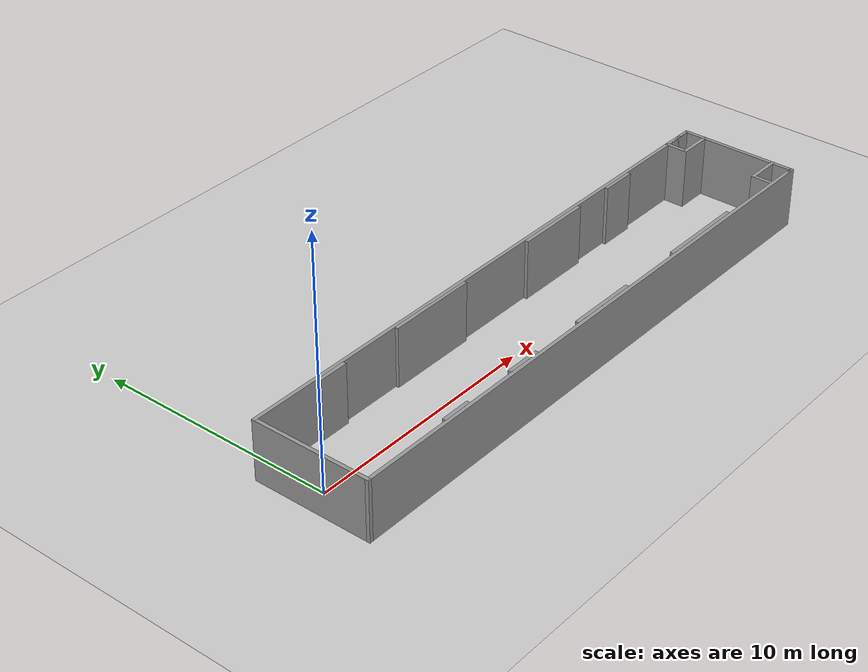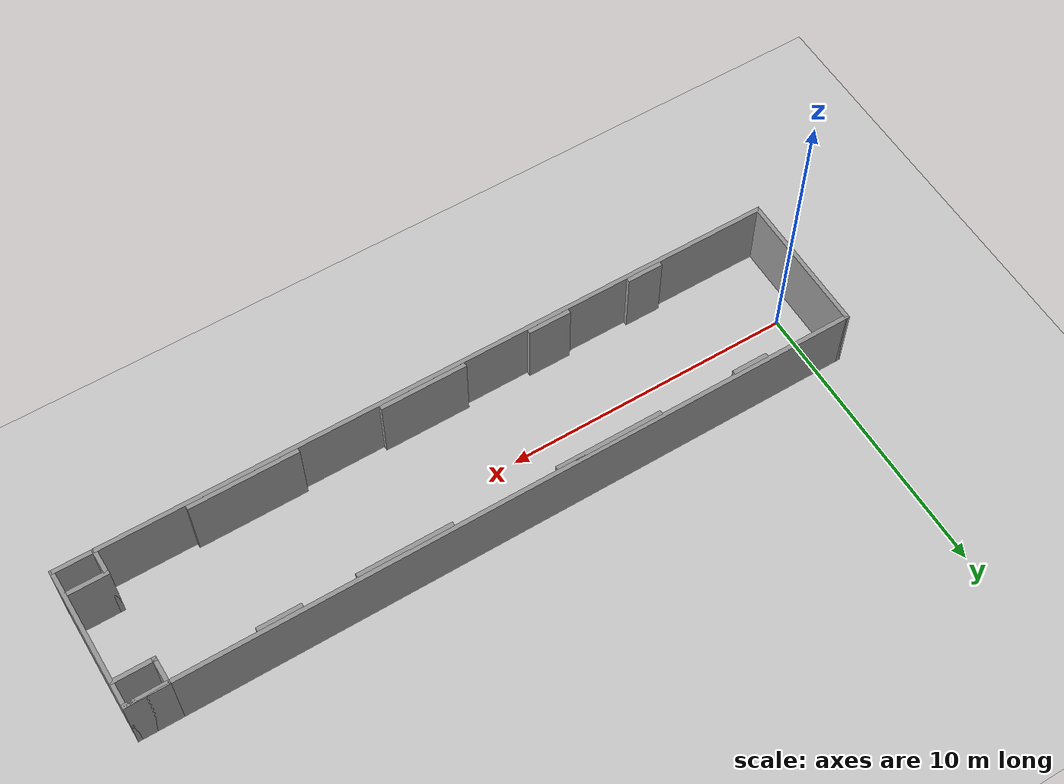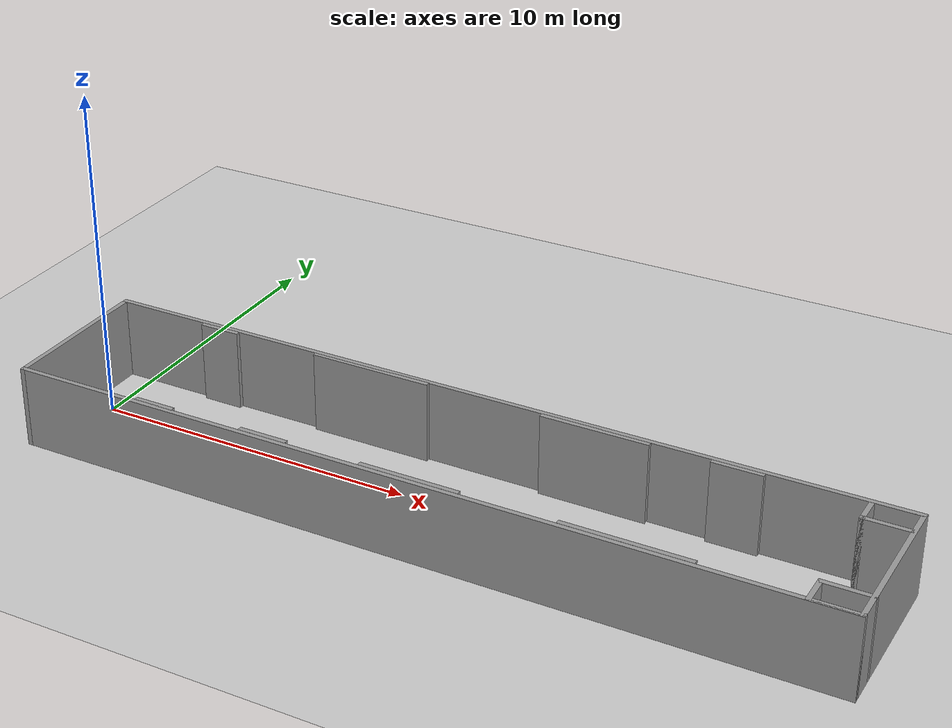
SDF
<sdf version="1.6">
 <world name="default">
  <light name="sun" type="directional">
   <pose>0 0 10 0 -0 0</pose>
   <diffuse>0.8 0.8 0.8 1</diffuse>
   <specular>0.1 0.1 0.1 1</specular>
   <attenuation>
    <range>1000</range>
    <constant>0.9</constant>
    <linear>0.01</linear>
    <quadratic>0.001</quadratic>
   </attenuation>
   <direction>-0.5 0.5 -1</direction>
  </light>
  <model name="ground_plane">
   <static>1</static>
   <link name="link">
    <collision name="collision">
     <geometry><plane><normal>0 0 1</normal><size>100 100</size></plane></geometry>
     <surface><friction><ode><mu>100</mu><mu2>50</mu2></ode></friction></surface>
    </collision>
    <visual name="visual">
     <cast_shadows>0</cast_shadows>
     <geometry><plane><normal>0 0 1</normal><size>100 100</size></plane></geometry>
     <material>
      <script><uri>file://media/materials/scripts/gazebo.material</uri><name>Gazebo/Grey</name></script>
     </material>
    </visual>
   </link>
  </model>
  <gravity>0 0 -9.8</gravity>
  <magnetic_field>6e-06 2.3e-05 -4.2e-05</magnetic_field>
  <atmosphere type="adiabatic"/>
  <physics name="default_physics" default="0" type="ode">
   <max_step_size>0.001</max_step_size>
   <real_time_factor>1</real_time_factor>
   <real_time_update_rate>1000</real_time_update_rate>
  </physics>
  <scene><ambient>0.4 0.4 0.4 1</ambient><background>0.7 0.7 0.7 1</background><shadows>1</shadows></scene>
  <spherical_coordinates>
   <surface_model>EARTH_WGS84</surface_model>
   <latitude_deg>0</latitude_deg>
   <longitude_deg>0</longitude_deg>
   <elevation>0</elevation>
   <heading_deg>0</heading_deg>
  </spherical_coordinates>
  <model name="i_map">
   <pose>11.5819 -0.300655 0 0 -0 0</pose>
   <link name="Wall_10">
    <collision name="Wall_10_Collision">
     <geometry><box><size>3.75 0.15 2.5</size></box></geometry>
     <pose>0 0 1.25 0 -0 0</pose>
    </collision>
    <visual name="Wall_10_Visual">
     <pose>0 0 1.25 0 -0 0</pose>
     <geometry><box><size>3.75 0.15 2.5</size></box></geometry>
     <material>
      <script><uri>file://media/materials/scripts/gazebo.material</uri><name>Gazebo/Grey</name></script>
      <ambient>1 1 1 1</ambient>
     </material>
    </visual>
    <pose>-3.72023 2.30333 0 0 -0 0</pose>
   </link>
   <link name="Wall_12">
    <collision name="Wall_12_Collision">
     <geometry><box><size>3.25 0.15 2.5</size></box></geometry>
     <pose>0 0 1.25 0 -0 0</pose>
    </collision>
    <visual name="Wall_12_Visual">
     <pose>0 0 1.25 0 -0 0</pose>
     <geometry><box><size>3.25 0.15 2.5</size></box></geometry>
     <material>
      <script><uri>file://media/materials/scripts/gazebo.material</uri><name>Gazebo/Grey</name></script>
      <ambient>1 1 1 1</ambient>
     </material>
    </visual>
    <pose>3.32997 2.28812 0 0 -0 0</pose>
   </link>
   <link name="Wall_14">
    <collision name="Wall_14_Collision">
     <geometry><box><size>1.5 0.15 2.5</size></box></geometry>
     <pose>0 0 1.25 0 -0 0</pose>
    </collision>
    <visual name="Wall_14_Visual">
     <pose>0 0 1.25 0 -0 0</pose>
     <geometry><box><size>1.5 0.15 2.5</size></box></geometry>
     <material>
      <script><uri>file://media/materials/scripts/gazebo.material</uri><name>Gazebo/Grey</name></script>
      <ambient>1 1 1 1</ambient>
     </material>
    </visual>
    <pose>7.45865 2.28812 0 0 -0 0</pose>
   </link>
   <link name="Wall_16">
    <collision name="Wall_16_Collision">
     <geometry><box><size>1.5 0.15 2.5</size></box></geometry>
     <pose>0 0 1.25 0 -0 0</pose>
    </collision>
    <visual name="Wall_16_Visual">
     <pose>0 0 1.25 0 -0 0</pose>
     <geometry><box><size>1.5 0.15 2.5</size></box></geometry>
     <material>
      <script><uri>file://media/materials/scripts/gazebo.material</uri><name>Gazebo/Grey</name></script>
      <ambient>1 1 1 1</ambient>
     </material>
    </visual>
    <pose>11.75 2.425 0 0 -0 3.14159</pose>
   </link>
   <link name="Wall_17">
    <collision name="Wall_17_Collision">
     <geometry><box><size>1 0.15 2.5</size></box></geometry>
     <pose>0 0 1.25 0 -0 0</pose>
    </collision>
    <visual name="Wall_17_Visual">
     <pose>0 0 1.25 0 -0 0</pose>
     <geometry><box><size>1 0.15 2.5</size></box></geometry>
     <material>
      <script><uri>file://media/materials/scripts/gazebo.material</uri><name>Gazebo/Grey</name></script>
      <ambient>1 1 1 1</ambient>
     </material>
    </visual>
    <pose>11.075 2 0 0 0 -1.5708</pose>
   </link>
   <link name="Wall_19">
    <collision name="Wall_19_Collision">
     <geometry><box><size>1.5 0.15 2.5</size></box></geometry>
     <pose>0 0 1.25 0 -0 0</pose>
    </collision>
    <visual name="Wall_19_Visual">
     <pose>0 0 1.25 0 -0 0</pose>
     <geometry><box><size>1.5 0.15 2.5</size></box></geometry>
     <material>
      <script><uri>file://media/materials/scripts/gazebo.material</uri><name>Gazebo/Grey</name></script>
      <ambient>1 1 1 1</ambient>
     </material>
    </visual>
    <pose>11.75 -2.425 0 0 -0 3.14159</pose>
   </link>
   <link name="Wall_2">
    <collision name="Wall_2_Collision">
     <geometry><box><size>25 0.15 2.5</size></box></geometry>
     <pose>0 0 1.25 0 -0 0</pose>
    </collision>
    <visual name="Wall_2_Visual">
     <pose>0 0 1.25 0 -0 0</pose>
     <geometry><box><size>25 0.15 2.5</size></box></geometry>
     <material>
      <script><uri>file://media/materials/scripts/gazebo.material</uri><name>Gazebo/Grey</name></script>
      <ambient>1 1 1 1</ambient>
     </material>
    </visual>
    <pose>0 2.425 0 0 -0 0</pose>
   </link>
   <link name="Wall_20">
    <collision name="Wall_20_Collision">
     <geometry><box><size>1 0.15 2.5</size></box></geometry>
     <pose>0 0 1.25 0 -0 0</pose>
    </collision>
    <visual name="Wall_20_Visual">
     <pose>0 0 1.25 0 -0 0</pose>
     <geometry><box><size>1 0.15 2.5</size></box></geometry>
     <material>
      <script><uri>file://media/materials/scripts/gazebo.material</uri><name>Gazebo/Grey</name></script>
      <ambient>1 1 1 1</ambient>
     </material>
    </visual>
    <pose>11.075 -2 0 0 -0 1.5708</pose>
   </link>
   <link name="Wall_21">
    <collision name="Wall_21_Collision">
     <geometry><box><size>1.5 0.15 2.5</size></box></geometry>
     <pose>0 0 1.25 0 -0 0</pose>
    </collision>
    <visual name="Wall_21_Visual">
     <pose>0 0 1.25 0 -0 0</pose>
     <geometry><box><size>1.5 0.15 2.5</size></box></geometry>
     <material>
      <script><uri>file://media/materials/scripts/gazebo.material</uri><name>Gazebo/Grey</name></script>
      <ambient>1 1 1 1</ambient>
     </material>
    </visual>
    <pose>11.75 -1.575 0 0 -0 0</pose>
   </link>
   <link name="Wall_23">
    <collision name="Wall_23_Collision">
     <geometry><box><size>1.5 0.15 2.5</size></box></geometry>
     <pose>0 0 1.25 0 -0 0</pose>
    </collision>
    <visual name="Wall_23_Visual">
     <pose>0 0 1.25 0 -0 0</pose>
     <geometry><box><size>1.5 0.15 2.5</size></box></geometry>
     <material>
      <script><uri>file://media/materials/scripts/gazebo.material</uri><name>Gazebo/Grey</name></script>
      <ambient>1 1 1 1</ambient>
     </material>
    </visual>
    <pose>11.75 1.575 0 0 -0 0</pose>
   </link>
   <link name="Wall_27">
    <collision name="Wall_27_Collision">
     <geometry><box><size>1.25 0.15 2.5</size></box></geometry>
     <pose>0 0 1.25 0 -0 0</pose>
    </collision>
    <visual name="Wall_27_Visual">
     <pose>0 0 1.25 0 -0 0</pose>
     <geometry><box><size>1.25 0.15 2.5</size></box></geometry>
     <material>
      <script><uri>file://media/materials/scripts/gazebo.material</uri><name>Gazebo/Grey</name></script>
      <ambient>1 1 1 1</ambient>
     </material>
    </visual>
    <pose>-7.96635 -2.28971 0 0 -0 0</pose>
   </link>
   <link name="Wall_29">
    <collision name="Wall_29_Collision">
     <geometry><box><size>1.5 0.15 2.5</size></box></geometry>
     <pose>0 0 1.25 0 -0 0</pose>
    </collision>
    <visual name="Wall_29_Visual">
     <pose>0 0 1.25 0 -0 0</pose>
     <geometry><box><size>1.5 0.15 2.5</size></box></geometry>
     <material>
      <script><uri>file://media/materials/scripts/gazebo.material</uri><name>Gazebo/Grey</name></script>
      <ambient>1 1 1 1</ambient>
     </material>
    </visual>
    <pose>-4.40417 -2.2745 0 0 -0 0</pose>
   </link>
   <link name="Wall_3">
    <collision name="Wall_3_Collision">
     <geometry><box><size>5 0.15 2.5</size></box></geometry>
     <pose>0 0 1.25 0 -0 0</pose>
    </collision>
    <visual name="Wall_3_Visual">
     <pose>0 0 1.25 0 -0 0</pose>
     <geometry><box><size>5 0.15 2.5</size></box></geometry>
     <material>
      <script><uri>file://media/materials/scripts/gazebo.material</uri><name>Gazebo/Grey</name></script>
      <ambient>1 1 1 1</ambient>
     </material>
    </visual>
    <pose>12.425 0 0 0 0 -1.5708</pose>
   </link>
   <link name="Wall_31">
    <collision name="Wall_31_Collision">
     <geometry><box><size>3 0.15 2.5</size></box></geometry>
     <pose>0 0 1.25 0 -0 0</pose>
    </collision>
    <visual name="Wall_31_Visual">
     <pose>0 0 1.25 0 -0 0</pose>
     <geometry><box><size>3 0.15 2.5</size></box></geometry>
     <material>
      <script><uri>file://media/materials/scripts/gazebo.material</uri><name>Gazebo/Grey</name></script>
      <ambient>1 1 1 1</ambient>
     </material>
    </visual>
    <pose>0.117596 -2.2745 0 0 -0 0</pose>
   </link>
   <link name="Wall_33">
    <collision name="Wall_33_Collision">
     <geometry><box><size>3.75 0.15 2.5</size></box></geometry>
     <pose>0 0 1.25 0 -0 0</pose>
    </collision>
    <visual name="Wall_33_Visual">
     <pose>0 0 1.25 0 -0 0</pose>
     <geometry><box><size>3.75 0.15 2.5</size></box></geometry>
     <material>
      <script><uri>file://media/materials/scripts/gazebo.material</uri><name>Gazebo/Grey</name></script>
      <ambient>1 1 1 1</ambient>
     </material>
    </visual>
    <pose>6.28713 -2.2745 0 0 -0 0</pose>
   </link>
   <link name="Wall_4">
    <collision name="Wall_4_Collision">
     <geometry><box><size>25 0.15 2.5</size></box></geometry>
     <pose>0 0 1.25 0 -0 0</pose>
    </collision>
    <visual name="Wall_4_Visual">
     <pose>0 0 1.25 0 -0 0</pose>
     <geometry><box><size>25 0.15 2.5</size></box></geometry>
     <material>
      <script><uri>file://media/materials/scripts/gazebo.material</uri><name>Gazebo/Grey</name></script>
      <ambient>1 1 1 1</ambient>
     </material>
    </visual>
    <pose>0 -2.425 0 0 -0 3.14159</pose>
   </link>
   <link name="Wall_5">
    <collision name="Wall_5_Collision">
     <geometry><box><size>5 0.15 2.5</size></box></geometry>
     <pose>0 0 1.25 0 -0 0</pose>
    </collision>
    <visual name="Wall_5_Visual">
     <pose>0 0 1.25 0 -0 0</pose>
     <geometry><box><size>5 0.15 2.5</size></box></geometry>
     <material>
      <script><uri>file://media/materials/scripts/gazebo.material</uri><name>Gazebo/Grey</name></script>
      <ambient>1 1 1 1</ambient>
     </material>
    </visual>
    <pose>-12.425 0 0 0 -0 1.5708</pose>
   </link>
   <link name="Wall_7">
    <collision name="Wall_7_Collision">
     <geometry><box><size>1.25 0.15 2.5</size></box></geometry>
     <pose>0 0 1.25 0 -0 0</pose>
    </collision>
    <visual name="Wall_7_Visual">
     <pose>0 0 1.25 0 -0 0</pose>
     <geometry><box><size>1.25 0.15 2.5</size></box></geometry>
     <material>
      <script><uri>file://media/materials/scripts/gazebo.material</uri><name>Gazebo/Grey</name></script>
      <ambient>1 1 1 1</ambient>
     </material>
    </visual>
    <pose>-8.87888 2.28812 0 0 -0 0</pose>
   </link>
   <static>1</static>
  </model>
 </world>
</sdf>
